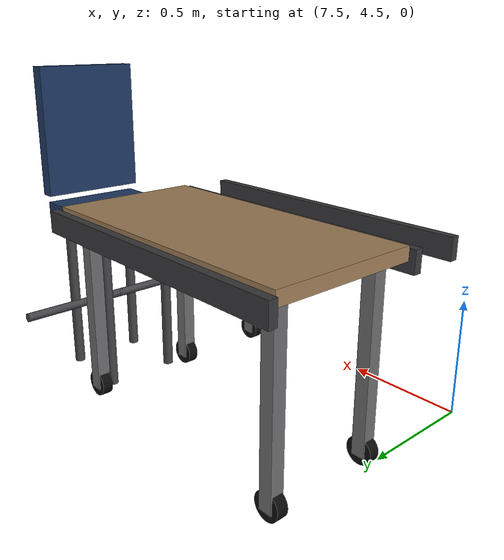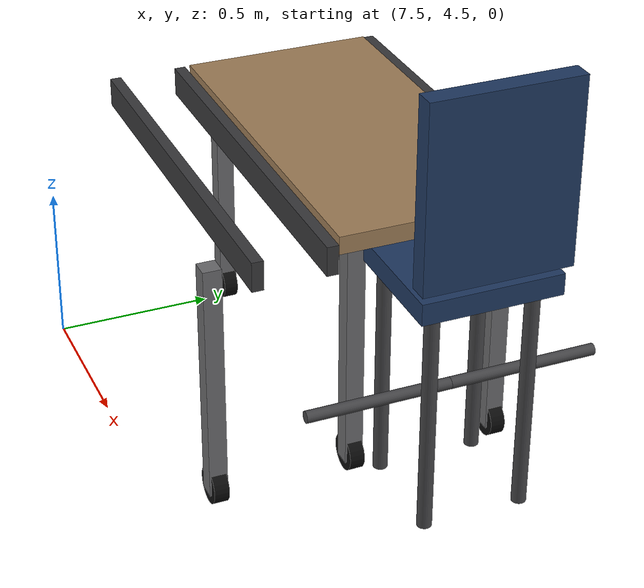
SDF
<sdf version="1.10">
 <model name="room_427_furnishings">
  <static>true</static>
  <link name="tall_mobile_table_3_front_edge">
   <pose>8.05 4.752 0.79 0 0 0</pose>
   <collision name="collision"><geometry><box><size>1.26 0.035 0.09</size></box></geometry></collision>
   <visual name="visual">
    <geometry><box><size>1.26 0.035 0.09</size></box></geometry>
    <material>
     <ambient>0.18 0.18 0.19 1</ambient>
     <diffuse>0.22 0.22 0.23 1</diffuse>
     <specular>0.35 0.35 0.35 1</specular>
    </material>
   </visual>
  </link>
  <link name="tall_mobile_table_3_leg_1">
   <pose>8.58 4.65 0.42 0 0 0</pose>
   <collision name="collision"><geometry><box><size>0.055 0.055 0.74</size></box></geometry></collision>
   <visual name="visual">
    <geometry><box><size>0.055 0.055 0.74</size></box></geometry>
    <material>
     <ambient>0.36 0.36 0.37 1</ambient>
     <diffuse>0.42 0.42 0.43 1</diffuse>
     <specular>0.45 0.45 0.45 1</specular>
    </material>
   </visual>
  </link>
  <link name="tall_mobile_table_3_caster_1">
   <pose>8.58 4.65 0.07 1.5708 0 0</pose>
   <collision name="collision">
    <geometry><cylinder><radius>0.055</radius><length>0.045</length></cylinder></geometry>
   </collision>
   <visual name="visual">
    <geometry><cylinder><radius>0.055</radius><length>0.045</length></cylinder></geometry>
    <material>
     <ambient>0.035 0.035 0.035 1</ambient>
     <diffuse>0.045 0.045 0.045 1</diffuse>
     <specular>0.08 0.08 0.08 1</specular>
    </material>
   </visual>
  </link>
  <link name="tall_mobile_table_4_top">
   <pose>8.05 5.3 0.82 0 0 0</pose>
   <collision name="collision"><geometry><box><size>1.22 0.61 0.055</size></box></geometry></collision>
   <visual name="visual">
    <geometry><box><size>1.22 0.61 0.055</size></box></geometry>
    <material>
     <ambient>0.58 0.46 0.32 1</ambient>
     <diffuse>0.62 0.49 0.34 1</diffuse>
     <specular>0.22 0.18 0.12 1</specular>
    </material>
   </visual>
  </link>
  <link name="tall_mobile_table_4_front_edge">
   <pose>8.05 5.632 0.79 0 0 0</pose>
   <collision name="collision"><geometry><box><size>1.26 0.035 0.09</size></box></geometry></collision>
   <visual name="visual">
    <geometry><box><size>1.26 0.035 0.09</size></box></geometry>
    <material>
     <ambient>0.18 0.18 0.19 1</ambient>
     <diffuse>0.22 0.22 0.23 1</diffuse>
     <specular>0.35 0.35 0.35 1</specular>
    </material>
   </visual>
  </link>
  <link name="tall_mobile_table_4_back_edge">
   <pose>8.05 4.968 0.79 0 0 0</pose>
   <collision name="collision"><geometry><box><size>1.26 0.035 0.09</size></box></geometry></collision>
   <visual name="visual">
    <geometry><box><size>1.26 0.035 0.09</size></box></geometry>
    <material>
     <ambient>0.18 0.18 0.19 1</ambient>
     <diffuse>0.22 0.22 0.23 1</diffuse>
     <specular>0.35 0.35 0.35 1</specular>
    </material>
   </visual>
  </link>
  <link name="tall_mobile_table_4_leg_1">
   <pose>8.58 5.53 0.42 0 0 0</pose>
   <collision name="collision"><geometry><box><size>0.055 0.055 0.74</size></box></geometry></collision>
   <visual name="visual">
    <geometry><box><size>0.055 0.055 0.74</size></box></geometry>
    <material>
     <ambient>0.36 0.36 0.37 1</ambient>
     <diffuse>0.42 0.42 0.43 1</diffuse>
     <specular>0.45 0.45 0.45 1</specular>
    </material>
   </visual>
  </link>
  <link name="tall_mobile_table_4_caster_1">
   <pose>8.58 5.53 0.07 1.5708 0 0</pose>
   <collision name="collision">
    <geometry><cylinder><radius>0.055</radius><length>0.045</length></cylinder></geometry>
   </collision>
   <visual name="visual">
    <geometry><cylinder><radius>0.055</radius><length>0.045</length></cylinder></geometry>
    <material>
     <ambient>0.035 0.035 0.035 1</ambient>
     <diffuse>0.045 0.045 0.045 1</diffuse>
     <specular>0.08 0.08 0.08 1</specular>
    </material>
   </visual>
  </link>
  <link name="tall_mobile_table_4_leg_2">
   <pose>8.58 5.07 0.42 0 0 0</pose>
   <collision name="collision"><geometry><box><size>0.055 0.055 0.74</size></box></geometry></collision>
   <visual name="visual">
    <geometry><box><size>0.055 0.055 0.74</size></box></geometry>
    <material>
     <ambient>0.36 0.36 0.37 1</ambient>
     <diffuse>0.42 0.42 0.43 1</diffuse>
     <specular>0.45 0.45 0.45 1</specular>
    </material>
   </visual>
  </link>
  <link name="tall_mobile_table_4_caster_2">
   <pose>8.58 5.07 0.07 1.5708 0 0</pose>
   <collision name="collision">
    <geometry><cylinder><radius>0.055</radius><length>0.045</length></cylinder></geometry>
   </collision>
   <visual name="visual">
    <geometry><cylinder><radius>0.055</radius><length>0.045</length></cylinder></geometry>
    <material>
     <ambient>0.035 0.035 0.035 1</ambient>
     <diffuse>0.045 0.045 0.045 1</diffuse>
     <specular>0.08 0.08 0.08 1</specular>
    </material>
   </visual>
  </link>
  <link name="tall_mobile_table_4_leg_3">
   <pose>7.52 5.53 0.42 0 0 0</pose>
   <collision name="collision"><geometry><box><size>0.055 0.055 0.74</size></box></geometry></collision>
   <visual name="visual">
    <geometry><box><size>0.055 0.055 0.74</size></box></geometry>
    <material>
     <ambient>0.36 0.36 0.37 1</ambient>
     <diffuse>0.42 0.42 0.43 1</diffuse>
     <specular>0.45 0.45 0.45 1</specular>
    </material>
   </visual>
  </link>
  <link name="tall_mobile_table_4_caster_3">
   <pose>7.52 5.53 0.07 1.5708 0 0</pose>
   <collision name="collision">
    <geometry><cylinder><radius>0.055</radius><length>0.045</length></cylinder></geometry>
   </collision>
   <visual name="visual">
    <geometry><cylinder><radius>0.055</radius><length>0.045</length></cylinder></geometry>
    <material>
     <ambient>0.035 0.035 0.035 1</ambient>
     <diffuse>0.045 0.045 0.045 1</diffuse>
     <specular>0.08 0.08 0.08 1</specular>
    </material>
   </visual>
  </link>
  <link name="tall_mobile_table_4_leg_4">
   <pose>7.52 5.07 0.42 0 0 0</pose>
   <collision name="collision"><geometry><box><size>0.055 0.055 0.74</size></box></geometry></collision>
   <visual name="visual">
    <geometry><box><size>0.055 0.055 0.74</size></box></geometry>
    <material>
     <ambient>0.36 0.36 0.37 1</ambient>
     <diffuse>0.42 0.42 0.43 1</diffuse>
     <specular>0.45 0.45 0.45 1</specular>
    </material>
   </visual>
  </link>
  <link name="tall_mobile_table_4_caster_4">
   <pose>7.52 5.07 0.07 1.5708 0 0</pose>
   <collision name="collision">
    <geometry><cylinder><radius>0.055</radius><length>0.045</length></cylinder></geometry>
   </collision>
   <visual name="visual">
    <geometry><cylinder><radius>0.055</radius><length>0.045</length></cylinder></geometry>
    <material>
     <ambient>0.035 0.035 0.035 1</ambient>
     <diffuse>0.045 0.045 0.045 1</diffuse>
     <specular>0.08 0.08 0.08 1</specular>
    </material>
   </visual>
  </link>
  <link name="high_chair_4_seat">
   <pose>8.77 5.3 0.76 0 0 3.1416</pose>
   <collision name="collision"><geometry><box><size>0.42 0.42 0.065</size></box></geometry></collision>
   <visual name="visual">
    <geometry><box><size>0.42 0.42 0.065</size></box></geometry>
    <material>
     <ambient>0.10 0.17 0.28 1</ambient>
     <diffuse>0.12 0.22 0.38 1</diffuse>
     <specular>0.18 0.2 0.24 1</specular>
    </material>
   </visual>
  </link>
  <link name="high_chair_4_back">
   <pose>8.97 5.3 1.1 0 0 3.1416</pose>
   <collision name="collision"><geometry><box><size>0.06 0.44 0.55</size></box></geometry></collision>
   <visual name="visual">
    <geometry><box><size>0.06 0.44 0.55</size></box></geometry>
    <material>
     <ambient>0.10 0.17 0.28 1</ambient>
     <diffuse>0.12 0.22 0.38 1</diffuse>
     <specular>0.18 0.2 0.24 1</specular>
    </material>
   </visual>
  </link>
  <link name="high_chair_4_leg_1">
   <pose>8.62 5.15 0.39 0 0 3.1416</pose>
   <collision name="collision">
    <geometry><cylinder><radius>0.022</radius><length>0.74</length></cylinder></geometry>
   </collision>
   <visual name="visual">
    <geometry><cylinder><radius>0.022</radius><length>0.74</length></cylinder></geometry>
    <material>
     <ambient>0.20 0.20 0.21 1</ambient>
     <diffuse>0.27 0.27 0.28 1</diffuse>
     <specular>0.35 0.35 0.35 1</specular>
    </material>
   </visual>
  </link>
  <link name="high_chair_4_leg_2">
   <pose>8.62 5.45 0.39 0 0 3.1416</pose>
   <collision name="collision">
    <geometry><cylinder><radius>0.022</radius><length>0.74</length></cylinder></geometry>
   </collision>
   <visual name="visual">
    <geometry><cylinder><radius>0.022</radius><length>0.74</length></cylinder></geometry>
    <material>
     <ambient>0.20 0.20 0.21 1</ambient>
     <diffuse>0.27 0.27 0.28 1</diffuse>
     <specular>0.35 0.35 0.35 1</specular>
    </material>
   </visual>
  </link>
  <link name="high_chair_4_leg_3">
   <pose>8.92 5.15 0.39 0 0 3.1416</pose>
   <collision name="collision">
    <geometry><cylinder><radius>0.022</radius><length>0.74</length></cylinder></geometry>
   </collision>
   <visual name="visual">
    <geometry><cylinder><radius>0.022</radius><length>0.74</length></cylinder></geometry>
    <material>
     <ambient>0.20 0.20 0.21 1</ambient>
     <diffuse>0.27 0.27 0.28 1</diffuse>
     <specular>0.35 0.35 0.35 1</specular>
    </material>
   </visual>
  </link>
  <link name="high_chair_4_leg_4">
   <pose>8.92 5.45 0.39 0 0 3.1416</pose>
   <collision name="collision">
    <geometry><cylinder><radius>0.022</radius><length>0.74</length></cylinder></geometry>
   </collision>
   <visual name="visual">
    <geometry><cylinder><radius>0.022</radius><length>0.74</length></cylinder></geometry>
    <material>
     <ambient>0.20 0.20 0.21 1</ambient>
     <diffuse>0.27 0.27 0.28 1</diffuse>
     <specular>0.35 0.35 0.35 1</specular>
    </material>
   </visual>
  </link>
  <link name="high_chair_4_foot_ring_front">
   <pose>8.77 5.08 0.37 1.5708 0 3.1416</pose>
   <visual name="visual">
    <geometry><cylinder><radius>0.018</radius><length>0.46</length></cylinder></geometry>
    <material>
     <ambient>0.20 0.20 0.21 1</ambient>
     <diffuse>0.27 0.27 0.28 1</diffuse>
     <specular>0.35 0.35 0.35 1</specular>
    </material>
   </visual>
  </link>
  <link name="high_chair_4_foot_ring_back">
   <pose>8.77 5.52 0.37 1.5708 0 3.1416</pose>
   <visual name="visual">
    <geometry><cylinder><radius>0.018</radius><length>0.46</length></cylinder></geometry>
    <material>
     <ambient>0.20 0.20 0.21 1</ambient>
     <diffuse>0.27 0.27 0.28 1</diffuse>
     <specular>0.35 0.35 0.35 1</specular>
    </material>
   </visual>
  </link>
 </model>
</sdf>
